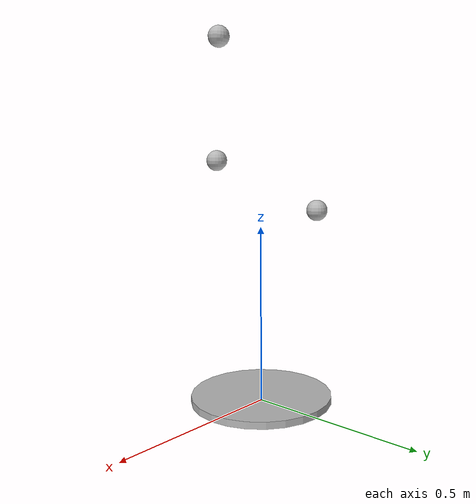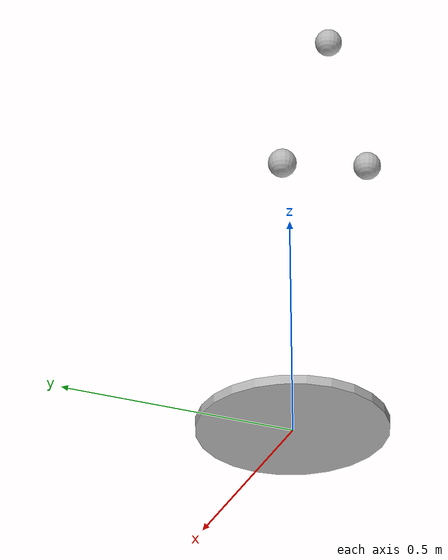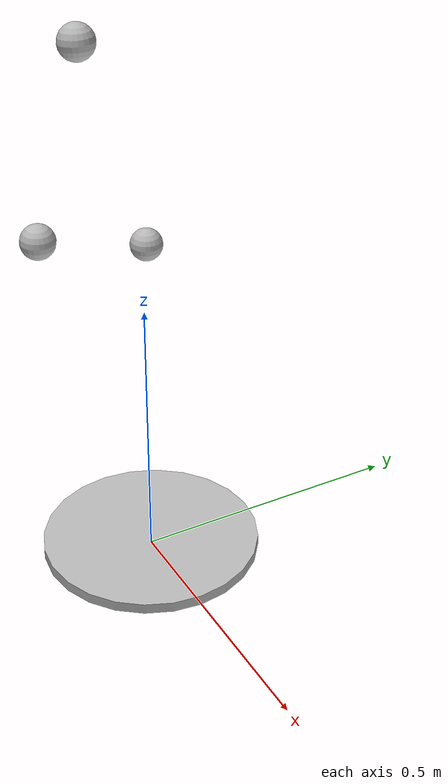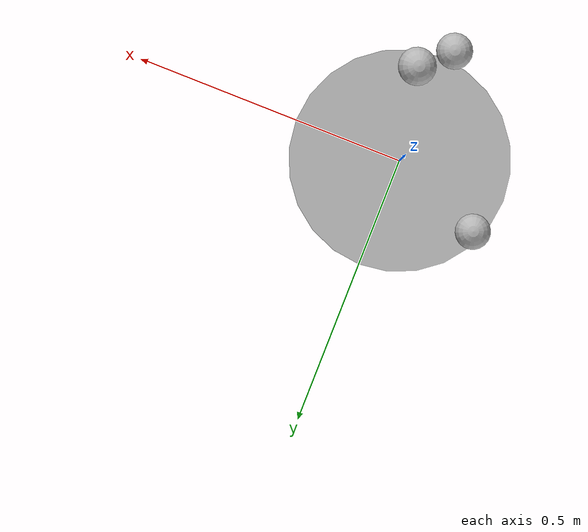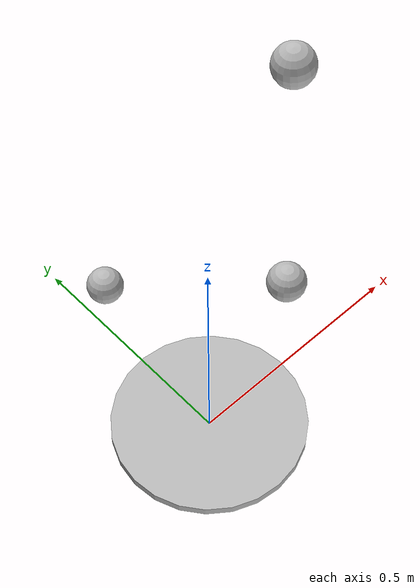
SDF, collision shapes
<?xml version="1.0"?>
<sdf version="1.6">
    <model name="plant_all_bell_peppers">
      <link name="veggie_plant_link">

        <inertial>
          <pose>0 0 0 0 0 0</pose>
          <mass>20</mass>
          <inertia>
            <ixx>0.2006</ixx>
            <ixy>0</ixy>
            <ixz>0</ixz>
            <iyy>0.2006</iyy>
            <iyz>0</iyz>
            <izz>0.4</izz>
          </inertia>
        </inertial>

        <visual name="visual">
          <pose>0 0 0 0 0 0</pose>
          <geometry>
            <mesh><uri>model://plant_all_bell_peppers/meshes/KB_plant.dae</uri></mesh>
          </geometry>
        </visual>
        <collision name="collision">
          <pose>0 0 0.01 0 0 0</pose>
            <geometry>
              <cylinder>
                <radius>0.2</radius>
                <length>0.02</length>
              </cylinder>
            </geometry>
        </collision>
      </link>

      <link name="t_link_0">
        <pose>0.04 -0.117 1.02 0.0 0.1 -3.14</pose>
        <inertial>
          <mass>0.001</mass>
          <inertia>
            <ixx>3.6e-03</ixx>
            <ixy>0</ixy>
            <ixz>0</ixz>
            <iyy>3.6e-03</iyy>
            <iyz>0</iyz>
            <izz>3.6e-03</izz>
          </inertia>
        </inertial>

      <surface>
        <friction>
          <ode>
            <mu>100000</mu>
            <mu2>100000</mu2>
          </ode>
        </friction>
      </surface>
        <collision name="collision">
          <geometry>
            <sphere><radius>0.03</radius></sphere>
          </geometry>
        </collision>
        <visual name="visual">
          <geometry>
            <mesh><uri>model://bell_pepper_red/meshes/bell_pepper_red.dae</uri></mesh>
          </geometry>
        </visual>
      </link>

      <link name="t_link_1">
        <pose>-0.01 -0.18 0.6787 0 0 -1.57</pose>
        <inertial>
          <mass>0.001</mass>
          <inertia>
            <ixx>3.6e-03</ixx>
            <ixy>0</ixy>
            <ixz>0</ixz>
            <iyy>3.6e-03</iyy>
            <iyz>0</iyz>
            <izz>3.6e-03</izz>
          </inertia>
        </inertial>

      <surface>
        <friction>
          <ode>
            <mu>100000</mu>
            <mu2>100000</mu2>
          </ode>
        </friction>
      </surface>
        <collision name="collision">
          <geometry>
            <sphere><radius>0.03</radius></sphere>
          </geometry>
        </collision>
        <visual name="visual">
          <geometry>
            <mesh><uri>model://bell_pepper_brown/meshes/bell_pepper_brown.dae</uri></mesh>
          </geometry>
        </visual>
      </link>

      <link name="t_link_2">
        <pose>-0.15 0.08 0.54 0 0 -0.5</pose>
        <inertial>
          <mass>0.001</mass>
          <inertia>
            <ixx>3.6e-03</ixx>
            <ixy>0</ixy>
            <ixz>0</ixz>
            <iyy>3.6e-03</iyy>
            <iyz>0</iyz>
            <izz>3.6e-03</izz>
          </inertia>
        </inertial>

      <surface>
        <friction>
          <ode>
            <mu>100000</mu>
            <mu2>100000</mu2>
          </ode>
        </friction>
      </surface>
        <collision name="collision">
          <geometry>
            <sphere><radius>0.03</radius></sphere>
          </geometry>
        </collision>
        <visual name="visual">
          <geometry>
            <mesh><uri>model://bell_pepper_yellow/meshes/bell_pepper_yellow.dae</uri></mesh>
          </geometry>
        </visual>
      </link>

      <joint name="t_joint_0" type="fixed">
        <parent>veggie_plant_link</parent>
        <child>t_link_0</child>
        <axis>
          <xyz>0 0 1</xyz>
          <use_parent_model_frame>true</use_parent_model_frame>
        </axis>
        <sensor name="force_torque" type="force_torque">
          <always_on>true</always_on>
          <update_rate>100</update_rate>
          <plugin name="breakable_0" filename="libBreakableJointPlugin.so">
            <breaking_force_N>10</breaking_force_N>
          </plugin>
        </sensor>
      </joint>

      <joint name="t_joint_1" type="fixed">
        <parent>veggie_plant_link</parent>
        <child>t_link_1</child>
        <axis>
          <xyz>0 0 1</xyz>
          <use_parent_model_frame>true</use_parent_model_frame>
        </axis>
        <sensor name="force_torque" type="force_torque">
          <always_on>true</always_on>
          <update_rate>100</update_rate>
          <plugin name="breakable_1" filename="libBreakableJointPlugin.so">
            <breaking_force_N>10</breaking_force_N>
          </plugin>
        </sensor>
      </joint>

      <joint name="t_joint_2" type="fixed">
        <parent>veggie_plant_link</parent>
        <child>t_link_2</child>
        <axis>
          <xyz>0 0 1</xyz>
          <use_parent_model_frame>true</use_parent_model_frame>
        </axis>
        <sensor name="force_torque" type="force_torque">
          <always_on>true</always_on>
          <update_rate>100</update_rate>
          <plugin name="breakable_2" filename="libBreakableJointPlugin.so">
            <breaking_force_N>10</breaking_force_N>
          </plugin>
        </sensor>
      </joint>

    </model>
</sdf>
